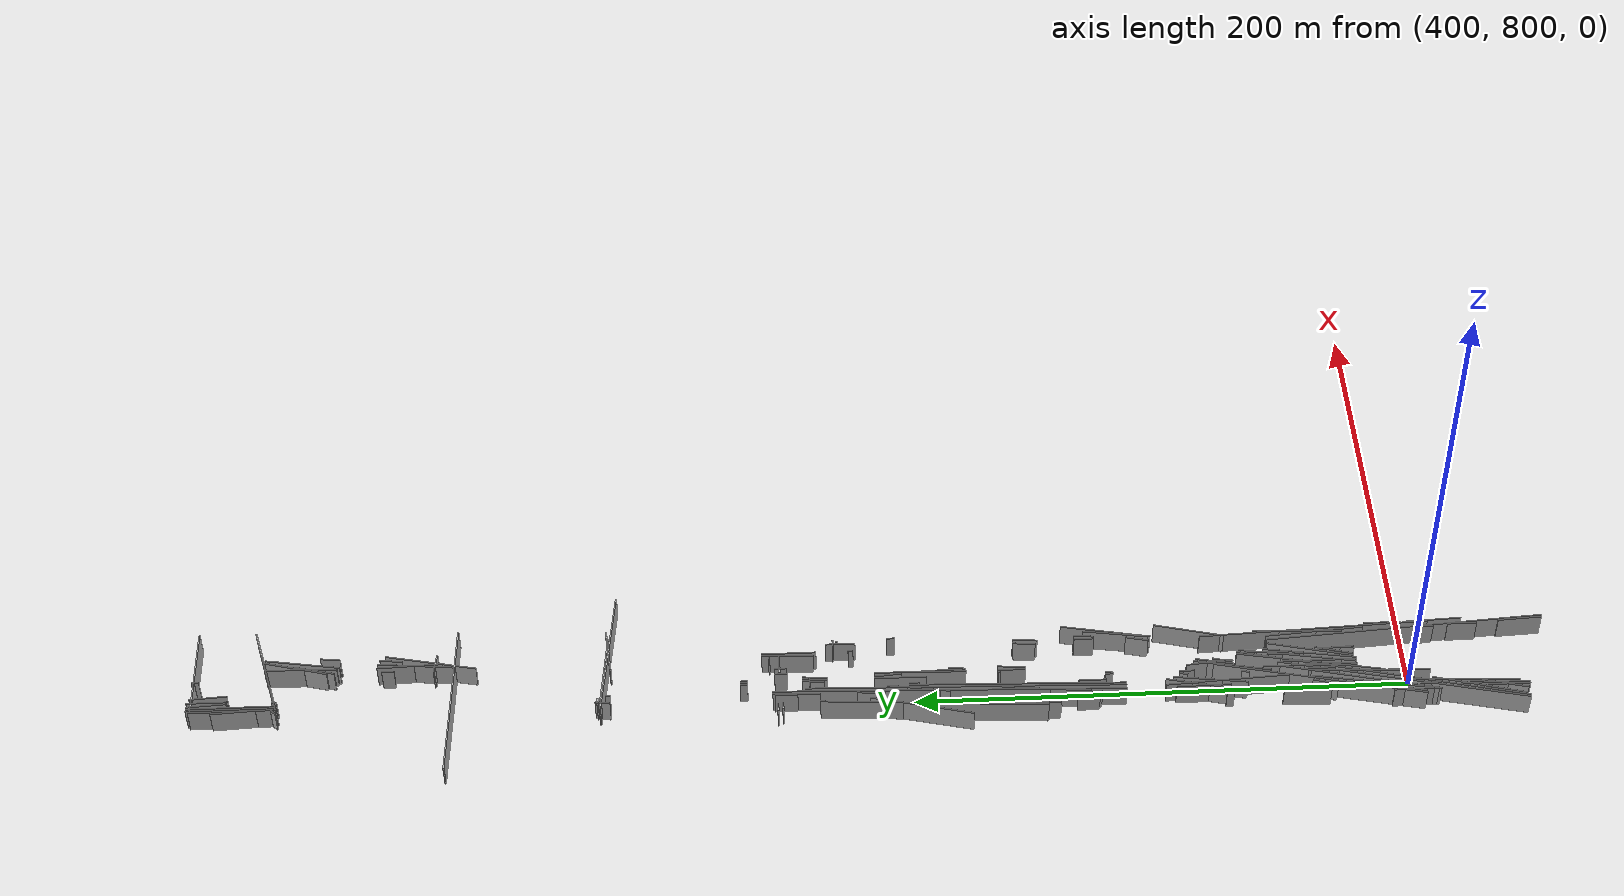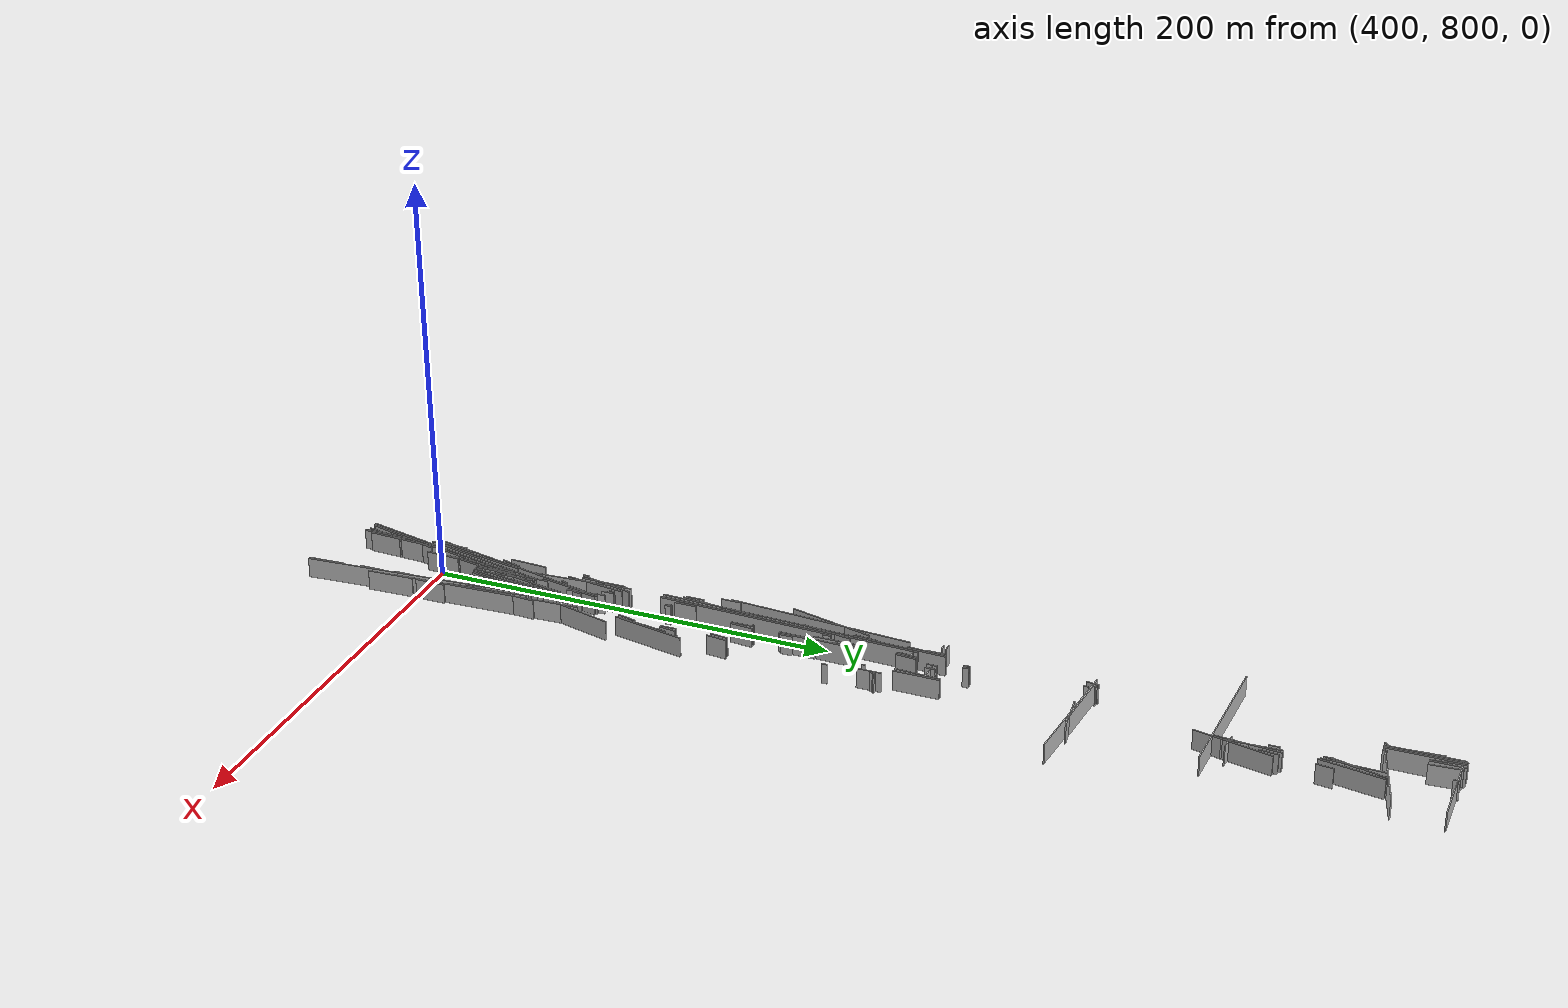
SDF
<sdf version="1.6">
 <model name="Worldsegments">
  <static>1</static>
  <link name="Wall_18">
   <pose>398.0 811.5 5.0 0 0 1.3319651</pose>
   <collision name="Wall_18_Collision">
    <geometry><box><size>118.35962 0.5 10.0</size></box></geometry>
   </collision>
   <visual name="Wall_18_Visual"><geometry><box><size>118.35962 0.5 10.0</size></box></geometry></visual>
  </link>
  <link name="Wall_19">
   <pose>399.0 998.5 5.0 0 0 1.4121411</pose>
   <collision name="Wall_19_Collision">
    <geometry><box><size>25.317978 0.5 10.0</size></box></geometry>
   </collision>
   <visual name="Wall_19_Visual"><geometry><box><size>25.317978 0.5 10.0</size></box></geometry></visual>
  </link>
  <link name="Wall_37">
   <pose>404.0 1068.5 5.0 0 0 1.5707964</pose>
   <collision name="Wall_37_Collision"><geometry><box><size>3.0 0.5 10.0</size></box></geometry></collision>
   <visual name="Wall_37_Visual"><geometry><box><size>3.0 0.5 10.0</size></box></geometry></visual>
  </link>
  <link name="Wall_41">
   <pose>422.0 799.0 5.0 0 0 -1.5007358</pose>
   <collision name="Wall_41_Collision">
    <geometry><box><size>114.28036 0.5 10.0</size></box></geometry>
   </collision>
   <visual name="Wall_41_Visual"><geometry><box><size>114.28036 0.5 10.0</size></box></geometry></visual>
  </link>
  <link name="Wall_48">
   <pose>408.0 875.0 5.0 0 0 1.3258177</pose>
   <collision name="Wall_48_Collision"><geometry><box><size>8.246211 0.5 10.0</size></box></geometry></collision>
   <visual name="Wall_48_Visual"><geometry><box><size>8.246211 0.5 10.0</size></box></geometry></visual>
  </link>
  <link name="Wall_55">
   <pose>400.0 928.5 5.0 0 0 1.5707964</pose>
   <collision name="Wall_55_Collision"><geometry><box><size>11.0 0.5 10.0</size></box></geometry></collision>
   <visual name="Wall_55_Visual"><geometry><box><size>11.0 0.5 10.0</size></box></geometry></visual>
  </link>
  <link name="Wall_57">
   <pose>390.0 773.5 5.0 0 0 1.3068326</pose>
   <collision name="Wall_57_Collision">
    <geometry><box><size>38.327538 0.5 10.0</size></box></geometry>
   </collision>
   <visual name="Wall_57_Visual"><geometry><box><size>38.327538 0.5 10.0</size></box></geometry></visual>
  </link>
  <link name="Wall_68">
   <pose>418.0 1211.5 5.0 0 0 1.5707964</pose>
   <collision name="Wall_68_Collision"><geometry><box><size>5.0 0.5 10.0</size></box></geometry></collision>
   <visual name="Wall_68_Visual"><geometry><box><size>5.0 0.5 10.0</size></box></geometry></visual>
  </link>
  <link name="Wall_72">
   <pose>406.5 1040.0 5.0 0 0 1.4711276</pose>
   <collision name="Wall_72_Collision">
    <geometry><box><size>10.049875 0.5 10.0</size></box></geometry>
   </collision>
   <visual name="Wall_72_Visual"><geometry><box><size>10.049875 0.5 10.0</size></box></geometry></visual>
  </link>
  <link name="Wall_73">
   <pose>400.0 822.0 5.0 0 0 1.5182133</pose>
   <collision name="Wall_73_Collision">
    <geometry><box><size>38.052597 0.5 10.0</size></box></geometry>
   </collision>
   <visual name="Wall_73_Visual"><geometry><box><size>38.052597 0.5 10.0</size></box></geometry></visual>
  </link>
  <link name="Wall_83">
   <pose>404.5 1040.5 5.0 0 0 1.4601392</pose>
   <collision name="Wall_83_Collision"><geometry><box><size>9.055386 0.5 10.0</size></box></geometry></collision>
   <visual name="Wall_83_Visual"><geometry><box><size>9.055386 0.5 10.0</size></box></geometry></visual>
  </link>
  <link name="Wall_93">
   <pose>423.5 1123.0 5.0 0 0 -0.1013465</pose>
   <collision name="Wall_93_Collision"><geometry><box><size>59.3043 0.5 10.0</size></box></geometry></collision>
   <visual name="Wall_93_Visual"><geometry><box><size>59.3043 0.5 10.0</size></box></geometry></visual>
  </link>
  <link name="Wall_98">
   <pose>420.5 1200.5 5.0 0 0 1.4743226</pose>
   <collision name="Wall_98_Collision">
    <geometry><box><size>31.144823 0.5 10.0</size></box></geometry>
   </collision>
   <visual name="Wall_98_Visual"><geometry><box><size>31.144823 0.5 10.0</size></box></geometry></visual>
  </link>
  <link name="Wall_100">
   <pose>395.0 884.0 5.0 0 0 1.5707964</pose>
   <collision name="Wall_100_Collision"><geometry><box><size>22.0 0.5 10.0</size></box></geometry></collision>
   <visual name="Wall_100_Visual"><geometry><box><size>22.0 0.5 10.0</size></box></geometry></visual>
  </link>
  <link name="Wall_101">
   <pose>401.0 1273.0 5.0 0 0 -1.5707964</pose>
   <collision name="Wall_101_Collision"><geometry><box><size>36.0 0.5 10.0</size></box></geometry></collision>
   <visual name="Wall_101_Visual"><geometry><box><size>36.0 0.5 10.0</size></box></geometry></visual>
  </link>
  <link name="Wall_104">
   <pose>424.5 887.0 5.0 0 0 1.3258177</pose>
   <collision name="Wall_104_Collision">
    <geometry><box><size>28.86174 0.5 10.0</size></box></geometry>
   </collision>
   <visual name="Wall_104_Visual"><geometry><box><size>28.86174 0.5 10.0</size></box></geometry></visual>
  </link>
  <link name="Wall_106">
   <pose>410.0 839.5 5.0 0 0 1.4100336</pose>
   <collision name="Wall_106_Collision">
    <geometry><box><size>37.48333 0.5 10.0</size></box></geometry>
   </collision>
   <visual name="Wall_106_Visual"><geometry><box><size>37.48333 0.5 10.0</size></box></geometry></visual>
  </link>
  <link name="Wall_108">
   <pose>397.5 986.0 5.0 0 0 1.5355996</pose>
   <collision name="Wall_108_Collision"><geometry><box><size>142.088 0.5 10.0</size></box></geometry></collision>
   <visual name="Wall_108_Visual"><geometry><box><size>142.088 0.5 10.0</size></box></geometry></visual>
  </link>
  <link name="Wall_110">
   <pose>402.5 1185.5 5.0 0 0 -0.0422284</pose>
   <collision name="Wall_110_Collision">
    <geometry><box><size>71.063354 0.5 10.0</size></box></geometry>
   </collision>
   <visual name="Wall_110_Visual"><geometry><box><size>71.063354 0.5 10.0</size></box></geometry></visual>
  </link>
  <link name="Wall_113">
   <pose>426.0 1008.5 5.0 0 0 -1.5707964</pose>
   <collision name="Wall_113_Collision"><geometry><box><size>3.0 0.5 10.0</size></box></geometry></collision>
   <visual name="Wall_113_Visual"><geometry><box><size>3.0 0.5 10.0</size></box></geometry></visual>
  </link>
  <link name="Wall_122">
   <pose>402.0 835.5 5.0 0 0 1.5707964</pose>
   <collision name="Wall_122_Collision"><geometry><box><size>11.0 0.5 10.0</size></box></geometry></collision>
   <visual name="Wall_122_Visual"><geometry><box><size>11.0 0.5 10.0</size></box></geometry></visual>
  </link>
  <link name="Wall_132">
   <pose>399.5 958.5 5.0 0 0 1.5363272</pose>
   <collision name="Wall_132_Collision">
    <geometry><box><size>87.05171 0.5 10.0</size></box></geometry>
   </collision>
   <visual name="Wall_132_Visual"><geometry><box><size>87.05171 0.5 10.0</size></box></geometry></visual>
  </link>
  <link name="Wall_134">
   <pose>405.0 871.5 5.0 0 0 1.3796118</pose>
   <collision name="Wall_134_Collision">
    <geometry><box><size>31.575306 0.5 10.0</size></box></geometry>
   </collision>
   <visual name="Wall_134_Visual"><geometry><box><size>31.575306 0.5 10.0</size></box></geometry></visual>
  </link>
  <link name="Wall_138">
   <pose>420.5 1246.5 5.0 0 0 1.5363272</pose>
   <collision name="Wall_138_Collision">
    <geometry><box><size>29.017237 0.5 10.0</size></box></geometry>
   </collision>
   <visual name="Wall_138_Visual"><geometry><box><size>29.017237 0.5 10.0</size></box></geometry></visual>
  </link>
  <link name="Wall_141">
   <pose>397.5 1125.0 5.0 0 0 1.4056476</pose>
   <collision name="Wall_141_Collision">
    <geometry><box><size>6.0827627 0.5 10.0</size></box></geometry>
   </collision>
   <visual name="Wall_141_Visual"><geometry><box><size>6.0827627 0.5 10.0</size></box></geometry></visual>
  </link>
  <link name="Wall_147">
   <pose>405.5 839.5 5.0 0 0 1.3864719</pose>
   <collision name="Wall_147_Collision">
    <geometry><box><size>60.016663 0.5 10.0</size></box></geometry>
   </collision>
   <visual name="Wall_147_Visual"><geometry><box><size>60.016663 0.5 10.0</size></box></geometry></visual>
  </link>
  <link name="Wall_150">
   <pose>394.5 803.5 5.0 0 0 1.3425225</pose>
   <collision name="Wall_150_Collision">
    <geometry><box><size>101.636604 0.5 10.0</size></box></geometry>
   </collision>
   <visual name="Wall_150_Visual"><geometry><box><size>101.636604 0.5 10.0</size></box></geometry></visual>
  </link>
  <link name="Wall_155">
   <pose>421.0 908.5 5.0 0 0 1.3521274</pose>
   <collision name="Wall_155_Collision">
    <geometry><box><size>9.219544 0.5 10.0</size></box></geometry>
   </collision>
   <visual name="Wall_155_Visual"><geometry><box><size>9.219544 0.5 10.0</size></box></geometry></visual>
  </link>
  <link name="Wall_158">
   <pose>423.0 775.0 5.0 0 0 -1.5707964</pose>
   <collision name="Wall_158_Collision"><geometry><box><size>12.0 0.5 10.0</size></box></geometry></collision>
   <visual name="Wall_158_Visual"><geometry><box><size>12.0 0.5 10.0</size></box></geometry></visual>
  </link>
  <link name="Wall_170">
   <pose>401.0 1123.0 5.0 0 0 -1.5707964</pose>
   <collision name="Wall_170_Collision"><geometry><box><size>2.0 0.5 10.0</size></box></geometry></collision>
   <visual name="Wall_170_Visual"><geometry><box><size>2.0 0.5 10.0</size></box></geometry></visual>
  </link>
  <link name="Wall_172">
   <pose>423.5 930.0 5.0 0 0 1.4464413</pose>
   <collision name="Wall_172_Collision">
    <geometry><box><size>8.062258 0.5 10.0</size></box></geometry>
   </collision>
   <visual name="Wall_172_Visual"><geometry><box><size>8.062258 0.5 10.0</size></box></geometry></visual>
  </link>
  <link name="Wall_174">
   <pose>420.0 1241.0 5.0 0 0 1.3258177</pose>
   <collision name="Wall_174_Collision">
    <geometry><box><size>16.492422 0.5 10.0</size></box></geometry>
   </collision>
   <visual name="Wall_174_Visual"><geometry><box><size>16.492422 0.5 10.0</size></box></geometry></visual>
  </link>
  <link name="Wall_178">
   <pose>406.0 1068.5 5.0 0 0 1.5707964</pose>
   <collision name="Wall_178_Collision"><geometry><box><size>3.0 0.5 10.0</size></box></geometry></collision>
   <visual name="Wall_178_Visual"><geometry><box><size>3.0 0.5 10.0</size></box></geometry></visual>
  </link>
  <link name="Wall_179">
   <pose>407.0 960.5 5.0 0 0 -1.5707964</pose>
   <collision name="Wall_179_Collision"><geometry><box><size>11.0 0.5 10.0</size></box></geometry></collision>
   <visual name="Wall_179_Visual"><geometry><box><size>11.0 0.5 10.0</size></box></geometry></visual>
  </link>
  <link name="Wall_182">
   <pose>411.0 829.5 5.0 0 0 1.3101939</pose>
   <collision name="Wall_182_Collision">
    <geometry><box><size>15.524175 0.5 10.0</size></box></geometry>
   </collision>
   <visual name="Wall_182_Visual"><geometry><box><size>15.524175 0.5 10.0</size></box></geometry></visual>
  </link>
  <link name="Wall_185">
   <pose>409.0 1053.5 5.0 0 0 1.5707964</pose>
   <collision name="Wall_185_Collision"><geometry><box><size>5.0 0.5 10.0</size></box></geometry></collision>
   <visual name="Wall_185_Visual"><geometry><box><size>5.0 0.5 10.0</size></box></geometry></visual>
  </link>
  <link name="Wall_186">
   <pose>398.5 1047.5 5.0 0 0 1.5182133</pose>
   <collision name="Wall_186_Collision">
    <geometry><box><size>19.026299 0.5 10.0</size></box></geometry>
   </collision>
   <visual name="Wall_186_Visual"><geometry><box><size>19.026299 0.5 10.0</size></box></geometry></visual>
  </link>
  <link name="Wall_193">
   <pose>409.0 983.0 5.0 0 0 1.5707964</pose>
   <collision name="Wall_193_Collision"><geometry><box><size>6.0 0.5 10.0</size></box></geometry></collision>
   <visual name="Wall_193_Visual"><geometry><box><size>6.0 0.5 10.0</size></box></geometry></visual>
  </link>
  <link name="Wall_196">
   <pose>399.0 979.5 5.0 0 0 1.5397985</pose>
   <collision name="Wall_196_Collision"><geometry><box><size>129.062 0.5 10.0</size></box></geometry></collision>
   <visual name="Wall_196_Visual"><geometry><box><size>129.062 0.5 10.0</size></box></geometry></visual>
  </link>
  <link name="Wall_197">
   <pose>396.5 837.0 5.0 0 0 1.3483491</pose>
   <collision name="Wall_197_Collision">
    <geometry><box><size>86.12201 0.5 10.0</size></box></geometry>
   </collision>
   <visual name="Wall_197_Visual"><geometry><box><size>86.12201 0.5 10.0</size></box></geometry></visual>
  </link>
  <link name="Wall_205">
   <pose>421.5 836.0 5.0 0 0 -1.4959365</pose>
   <collision name="Wall_205_Collision">
    <geometry><box><size>40.112343 0.5 10.0</size></box></geometry>
   </collision>
   <visual name="Wall_205_Visual"><geometry><box><size>40.112343 0.5 10.0</size></box></geometry></visual>
  </link>
  <link name="Wall_209">
   <pose>390.0 761.5 5.0 0 0 1.5707964</pose>
   <collision name="Wall_209_Collision"><geometry><box><size>17.0 0.5 10.0</size></box></geometry></collision>
   <visual name="Wall_209_Visual"><geometry><box><size>17.0 0.5 10.0</size></box></geometry></visual>
  </link>
  <link name="Wall_216">
   <pose>405.0 1068.5 5.0 0 0 1.5707964</pose>
   <collision name="Wall_216_Collision"><geometry><box><size>3.0 0.5 10.0</size></box></geometry></collision>
   <visual name="Wall_216_Visual"><geometry><box><size>3.0 0.5 10.0</size></box></geometry></visual>
  </link>
  <link name="Wall_217">
   <pose>409.0 844.5 5.0 0 0 1.4021994</pose>
   <collision name="Wall_217_Collision">
    <geometry><box><size>47.67599 0.5 10.0</size></box></geometry>
   </collision>
   <visual name="Wall_217_Visual"><geometry><box><size>47.67599 0.5 10.0</size></box></geometry></visual>
  </link>
  <link name="Wall_222">
   <pose>420.0 1025.0 5.0 0 0 -1.5707964</pose>
   <collision name="Wall_222_Collision"><geometry><box><size>2.0 0.5 10.0</size></box></geometry></collision>
   <visual name="Wall_222_Visual"><geometry><box><size>2.0 0.5 10.0</size></box></geometry></visual>
  </link>
  <link name="Wall_225">
   <pose>403.0 921.5 5.0 0 0 1.5707964</pose>
   <collision name="Wall_225_Collision"><geometry><box><size>3.0 0.5 10.0</size></box></geometry></collision>
   <visual name="Wall_225_Visual"><geometry><box><size>3.0 0.5 10.0</size></box></geometry></visual>
  </link>
  <link name="Wall_233">
   <pose>422.0 930.0 5.0 0 0 -1.5707964</pose>
   <collision name="Wall_233_Collision"><geometry><box><size>8.0 0.5 10.0</size></box></geometry></collision>
   <visual name="Wall_233_Visual"><geometry><box><size>8.0 0.5 10.0</size></box></geometry></visual>
  </link>
  <link name="Wall_242">
   <pose>404.0 1042.0 5.0 0 0 0.0</pose>
   <collision name="Wall_242_Collision"><geometry><box><size>4.0 0.5 10.0</size></box></geometry></collision>
   <visual name="Wall_242_Visual"><geometry><box><size>4.0 0.5 10.0</size></box></geometry></visual>
  </link>
  <link name="Wall_245">
   <pose>391.0 992.5 5.0 0 0 1.5049576</pose>
   <collision name="Wall_245_Collision">
    <geometry><box><size>91.197586 0.5 10.0</size></box></geometry>
   </collision>
   <visual name="Wall_245_Visual"><geometry><box><size>91.197586 0.5 10.0</size></box></geometry></visual>
  </link>
  <link name="Wall_253">
   <pose>424.0 1029.0 5.0 0 0 -1.5707964</pose>
   <collision name="Wall_253_Collision"><geometry><box><size>12.0 0.5 10.0</size></box></geometry></collision>
   <visual name="Wall_253_Visual"><geometry><box><size>12.0 0.5 10.0</size></box></geometry></visual>
  </link>
  <link name="Wall_255">
   <pose>407.5 878.5 5.0 0 0 1.3734008</pose>
   <collision name="Wall_255_Collision">
    <geometry><box><size>15.297058 0.5 10.0</size></box></geometry>
   </collision>
   <visual name="Wall_255_Visual"><geometry><box><size>15.297058 0.5 10.0</size></box></geometry></visual>
  </link>
  <link name="Wall_261">
   <pose>390.5 764.0 5.0 0 0 1.3258177</pose>
   <collision name="Wall_261_Collision">
    <geometry><box><size>20.615528 0.5 10.0</size></box></geometry>
   </collision>
   <visual name="Wall_261_Visual"><geometry><box><size>20.615528 0.5 10.0</size></box></geometry></visual>
  </link>
  <link name="Wall_264">
   <pose>416.0 1288.5 5.0 0 0 -1.5707964</pose>
   <collision name="Wall_264_Collision"><geometry><box><size>3.0 0.5 10.0</size></box></geometry></collision>
   <visual name="Wall_264_Visual"><geometry><box><size>3.0 0.5 10.0</size></box></geometry></visual>
  </link>
  <link name="Wall_267">
   <pose>424.5 1032.0 5.0 0 0 0.0</pose>
   <collision name="Wall_267_Collision"><geometry><box><size>3.0 0.5 10.0</size></box></geometry></collision>
   <visual name="Wall_267_Visual"><geometry><box><size>3.0 0.5 10.0</size></box></geometry></visual>
  </link>
  <link name="Wall_279">
   <pose>425.5 921.0 5.0 0 0 1.3787483</pose>
   <collision name="Wall_279_Collision">
    <geometry><box><size>36.67424 0.5 10.0</size></box></geometry>
   </collision>
   <visual name="Wall_279_Visual"><geometry><box><size>36.67424 0.5 10.0</size></box></geometry></visual>
  </link>
  <link name="Wall_283">
   <pose>407.5 997.5 5.0 0 0 1.5437759</pose>
   <collision name="Wall_283_Collision">
    <geometry><box><size>37.01351 0.5 10.0</size></box></geometry>
   </collision>
   <visual name="Wall_283_Visual"><geometry><box><size>37.01351 0.5 10.0</size></box></geometry></visual>
  </link>
  <link name="Wall_286">
   <pose>420.0 1050.0 5.0 0 0 -1.5707964</pose>
   <collision name="Wall_286_Collision"><geometry><box><size>22.0 0.5 10.0</size></box></geometry></collision>
   <visual name="Wall_286_Visual"><geometry><box><size>22.0 0.5 10.0</size></box></geometry></visual>
  </link>
  <link name="Wall_289">
   <pose>420.5 1202.5 5.0 0 0 -1.5337762</pose>
   <collision name="Wall_289_Collision">
    <geometry><box><size>27.018513 0.5 10.0</size></box></geometry>
   </collision>
   <visual name="Wall_289_Visual"><geometry><box><size>27.018513 0.5 10.0</size></box></geometry></visual>
  </link>
  <link name="Wall_293">
   <pose>420.5 954.5 5.0 0 0 1.4601392</pose>
   <collision name="Wall_293_Collision">
    <geometry><box><size>9.055386 0.5 10.0</size></box></geometry>
   </collision>
   <visual name="Wall_293_Visual"><geometry><box><size>9.055386 0.5 10.0</size></box></geometry></visual>
  </link>
  <link name="Wall_295">
   <pose>420.5 1289.0 5.0 0 0 0.0</pose>
   <collision name="Wall_295_Collision"><geometry><box><size>41.0 0.5 10.0</size></box></geometry></collision>
   <visual name="Wall_295_Visual"><geometry><box><size>41.0 0.5 10.0</size></box></geometry></visual>
  </link>
  <link name="Wall_299">
   <pose>421.5 1249.0 5.0 0 0 1.3078016</pose>
   <collision name="Wall_299_Collision">
    <geometry><box><size>26.925823 0.5 10.0</size></box></geometry>
   </collision>
   <visual name="Wall_299_Visual"><geometry><box><size>26.925823 0.5 10.0</size></box></geometry></visual>
  </link>
  <link name="Wall_302">
   <pose>396.5 821.0 5.0 0 0 1.3405768</pose>
   <collision name="Wall_302_Collision">
    <geometry><box><size>65.734314 0.5 10.0</size></box></geometry>
   </collision>
   <visual name="Wall_302_Visual"><geometry><box><size>65.734314 0.5 10.0</size></box></geometry></visual>
  </link>
  <link name="Wall_305">
   <pose>390.0 997.5 5.0 0 0 1.3315648</pose>
   <collision name="Wall_305_Collision">
    <geometry><box><size>42.201897 0.5 10.0</size></box></geometry>
   </collision>
   <visual name="Wall_305_Visual"><geometry><box><size>42.201897 0.5 10.0</size></box></geometry></visual>
  </link>
  <link name="Wall_308">
   <pose>423.0 836.0 5.0 0 0 -1.5282688</pose>
   <collision name="Wall_308_Collision">
    <geometry><box><size>94.08507 0.5 10.0</size></box></geometry>
   </collision>
   <visual name="Wall_308_Visual"><geometry><box><size>94.08507 0.5 10.0</size></box></geometry></visual>
  </link>
  <link name="Wall_312">
   <pose>424.5 751.0 5.0 0 0 -1.5152978</pose>
   <collision name="Wall_312_Collision">
    <geometry><box><size>18.027756 0.5 10.0</size></box></geometry>
   </collision>
   <visual name="Wall_312_Visual"><geometry><box><size>18.027756 0.5 10.0</size></box></geometry></visual>
  </link>
  <link name="Wall_315">
   <pose>392.0 793.0 5.0 0 0 1.5707964</pose>
   <collision name="Wall_315_Collision"><geometry><box><size>8.0 0.5 10.0</size></box></geometry></collision>
   <visual name="Wall_315_Visual"><geometry><box><size>8.0 0.5 10.0</size></box></geometry></visual>
  </link>
  <link name="Wall_325">
   <pose>420.5 1260.5 5.0 0 0 0.26211983</pose>
   <collision name="Wall_325_Collision">
    <geometry><box><size>42.44997 0.5 10.0</size></box></geometry>
   </collision>
   <visual name="Wall_325_Visual"><geometry><box><size>42.44997 0.5 10.0</size></box></geometry></visual>
  </link>
  <link name="Wall_329">
   <pose>399.5 1272.0 5.0 0 0 -1.5152978</pose>
   <collision name="Wall_329_Collision">
    <geometry><box><size>18.027756 0.5 10.0</size></box></geometry>
   </collision>
   <visual name="Wall_329_Visual"><geometry><box><size>18.027756 0.5 10.0</size></box></geometry></visual>
  </link>
  <link name="Wall_339">
   <pose>423.5 1246.0 5.0 0 0 1.4056476</pose>
   <collision name="Wall_339_Collision">
    <geometry><box><size>30.413813 0.5 10.0</size></box></geometry>
   </collision>
   <visual name="Wall_339_Visual"><geometry><box><size>30.413813 0.5 10.0</size></box></geometry></visual>
  </link>
  <link name="Wall_342">
   <pose>403.5 1283.0 5.0 0 0 -1.5083776</pose>
   <collision name="Wall_342_Collision">
    <geometry><box><size>16.03122 0.5 10.0</size></box></geometry>
   </collision>
   <visual name="Wall_342_Visual"><geometry><box><size>16.03122 0.5 10.0</size></box></geometry></visual>
  </link>
  <link name="Wall_347">
   <pose>422.5 954.0 5.0 0 0 1.4711276</pose>
   <collision name="Wall_347_Collision">
    <geometry><box><size>10.049875 0.5 10.0</size></box></geometry>
   </collision>
   <visual name="Wall_347_Visual"><geometry><box><size>10.049875 0.5 10.0</size></box></geometry></visual>
  </link>
  <link name="Wall_350">
   <pose>411.5 856.5 5.0 0 0 1.5120405</pose>
   <collision name="Wall_350_Collision">
    <geometry><box><size>17.029387 0.5 10.0</size></box></geometry>
   </collision>
   <visual name="Wall_350_Visual"><geometry><box><size>17.029387 0.5 10.0</size></box></geometry></visual>
  </link>
  <link name="Wall_352">
   <pose>403.0 890.0 5.0 0 0 1.5707964</pose>
   <collision name="Wall_352_Collision"><geometry><box><size>6.0 0.5 10.0</size></box></geometry></collision>
   <visual name="Wall_352_Visual"><geometry><box><size>6.0 0.5 10.0</size></box></geometry></visual>
  </link>
  <link name="Wall_356">
   <pose>393.0 778.5 5.0 0 0 1.5243182</pose>
   <collision name="Wall_356_Collision">
    <geometry><box><size>43.046486 0.5 10.0</size></box></geometry>
   </collision>
   <visual name="Wall_356_Visual"><geometry><box><size>43.046486 0.5 10.0</size></box></geometry></visual>
  </link>
  <link name="Wall_358">
   <pose>414.5 1054.0 5.0 0 0 0.0</pose>
   <collision name="Wall_358_Collision"><geometry><box><size>9.0 0.5 10.0</size></box></geometry></collision>
   <visual name="Wall_358_Visual"><geometry><box><size>9.0 0.5 10.0</size></box></geometry></visual>
  </link>
  <link name="Wall_363">
   <pose>425.0 807.5 5.0 0 0 -1.5707964</pose>
   <collision name="Wall_363_Collision"><geometry><box><size>15.0 0.5 10.0</size></box></geometry></collision>
   <visual name="Wall_363_Visual"><geometry><box><size>15.0 0.5 10.0</size></box></geometry></visual>
  </link>
  <link name="Wall_383">
   <pose>424.0 917.0 5.0 0 0 1.418147</pose>
   <collision name="Wall_383_Collision">
    <geometry><box><size>26.305893 0.5 10.0</size></box></geometry>
   </collision>
   <visual name="Wall_383_Visual"><geometry><box><size>26.305893 0.5 10.0</size></box></geometry></visual>
  </link>
  <link name="Wall_388">
   <pose>392.0 774.0 5.0 0 0 1.5707964</pose>
   <collision name="Wall_388_Collision"><geometry><box><size>6.0 0.5 10.0</size></box></geometry></collision>
   <visual name="Wall_388_Visual"><geometry><box><size>6.0 0.5 10.0</size></box></geometry></visual>
  </link>
  <link name="Wall_391">
   <pose>406.0 836.5 5.0 0 0 -1.5707964</pose>
   <collision name="Wall_391_Collision"><geometry><box><size>31.0 0.5 10.0</size></box></geometry></collision>
   <visual name="Wall_391_Visual"><geometry><box><size>31.0 0.5 10.0</size></box></geometry></visual>
  </link>
  <link name="Wall_400">
   <pose>422.0 1194.5 5.0 0 0 1.357858</pose>
   <collision name="Wall_400_Collision">
    <geometry><box><size>37.85499 0.5 10.0</size></box></geometry>
   </collision>
   <visual name="Wall_400_Visual"><geometry><box><size>37.85499 0.5 10.0</size></box></geometry></visual>
  </link>
  <link name="Wall_409">
   <pose>406.5 1010.5 5.0 0 0 -1.4801364</pose>
   <collision name="Wall_409_Collision">
    <geometry><box><size>11.045361 0.5 10.0</size></box></geometry>
   </collision>
   <visual name="Wall_409_Visual"><geometry><box><size>11.045361 0.5 10.0</size></box></geometry></visual>
  </link>
  <link name="Wall_413">
   <pose>404.0 1256.0 5.0 0 0 1.5707964</pose>
   <collision name="Wall_413_Collision"><geometry><box><size>2.0 0.5 10.0</size></box></geometry></collision>
   <visual name="Wall_413_Visual"><geometry><box><size>2.0 0.5 10.0</size></box></geometry></visual>
  </link>
  <link name="Wall_424">
   <pose>408.0 988.0 5.0 0 0 -1.5707964</pose>
   <collision name="Wall_424_Collision"><geometry><box><size>18.0 0.5 10.0</size></box></geometry></collision>
   <visual name="Wall_424_Visual"><geometry><box><size>18.0 0.5 10.0</size></box></geometry></visual>
  </link>
  <link name="Wall_430">
   <pose>405.0 1283.0 5.0 0 0 1.5707964</pose>
   <collision name="Wall_430_Collision"><geometry><box><size>16.0 0.5 10.0</size></box></geometry></collision>
   <visual name="Wall_430_Visual"><geometry><box><size>16.0 0.5 10.0</size></box></geometry></visual>
  </link>
  <link name="Wall_434">
   <pose>393.5 815.0 5.0 0 0 1.3927034</pose>
   <collision name="Wall_434_Collision">
    <geometry><box><size>50.803543 0.5 10.0</size></box></geometry>
   </collision>
   <visual name="Wall_434_Visual"><geometry><box><size>50.803543 0.5 10.0</size></box></geometry></visual>
  </link>
  <link name="Wall_435">
   <pose>407.0 880.5 5.0 0 0 -1.4659194</pose>
   <collision name="Wall_435_Collision">
    <geometry><box><size>19.104973 0.5 10.0</size></box></geometry>
   </collision>
   <visual name="Wall_435_Visual"><geometry><box><size>19.104973 0.5 10.0</size></box></geometry></visual>
  </link>
  <link name="Wall_450">
   <pose>402.0 1273.5 5.0 0 0 -1.5707964</pose>
   <collision name="Wall_450_Collision"><geometry><box><size>35.0 0.5 10.0</size></box></geometry></collision>
   <visual name="Wall_450_Visual"><geometry><box><size>35.0 0.5 10.0</size></box></geometry></visual>
  </link>
  <link name="Wall_451">
   <pose>425.0 1030.5 5.0 0 0 1.5707964</pose>
   <collision name="Wall_451_Collision"><geometry><box><size>1.0 0.5 10.0</size></box></geometry></collision>
   <visual name="Wall_451_Visual"><geometry><box><size>1.0 0.5 10.0</size></box></geometry></visual>
  </link>
  <link name="Wall_454">
   <pose>392.5 1053.0 5.0 0 0 0.0</pose>
   <collision name="Wall_454_Collision"><geometry><box><size>3.0 0.5 10.0</size></box></geometry></collision>
   <visual name="Wall_454_Visual"><geometry><box><size>3.0 0.5 10.0</size></box></geometry></visual>
  </link>
  <link name="Wall_458">
   <pose>422.0 791.0 5.0 0 0 -1.5707964</pose>
   <collision name="Wall_458_Collision"><geometry><box><size>8.0 0.5 10.0</size></box></geometry></collision>
   <visual name="Wall_458_Visual"><geometry><box><size>8.0 0.5 10.0</size></box></geometry></visual>
  </link>
  <link name="Wall_465">
   <pose>391.0 766.5 5.0 0 0 1.5707964</pose>
   <collision name="Wall_465_Collision"><geometry><box><size>27.0 0.5 10.0</size></box></geometry></collision>
   <visual name="Wall_465_Visual"><geometry><box><size>27.0 0.5 10.0</size></box></geometry></visual>
  </link>
  <link name="Wall_472">
   <pose>392.0 873.5 5.0 0 0 1.5707964</pose>
   <collision name="Wall_472_Collision"><geometry><box><size>3.0 0.5 10.0</size></box></geometry></collision>
   <visual name="Wall_472_Visual"><geometry><box><size>3.0 0.5 10.0</size></box></geometry></visual>
  </link>
  <link name="Wall_481">
   <pose>425.0 1123.0 5.0 0 0 0.09966865</pose>
   <collision name="Wall_481_Collision">
    <geometry><box><size>20.09975 0.5 10.0</size></box></geometry>
   </collision>
   <visual name="Wall_481_Visual"><geometry><box><size>20.09975 0.5 10.0</size></box></geometry></visual>
  </link>
  <link name="Wall_490">
   <pose>398.0 881.0 5.0 0 0 1.4382448</pose>
   <collision name="Wall_490_Collision">
    <geometry><box><size>30.265491 0.5 10.0</size></box></geometry>
   </collision>
   <visual name="Wall_490_Visual"><geometry><box><size>30.265491 0.5 10.0</size></box></geometry></visual>
  </link>
  <link name="Wall_499">
   <pose>403.5 840.0 5.0 0 0 1.5444866</pose>
   <collision name="Wall_499_Collision">
    <geometry><box><size>38.013157 0.5 10.0</size></box></geometry>
   </collision>
   <visual name="Wall_499_Visual"><geometry><box><size>38.013157 0.5 10.0</size></box></geometry></visual>
  </link>
  <link name="Wall_504">
   <pose>412.0 1053.5 5.0 0 0 1.5707964</pose>
   <collision name="Wall_504_Collision"><geometry><box><size>5.0 0.5 10.0</size></box></geometry></collision>
   <visual name="Wall_504_Visual"><geometry><box><size>5.0 0.5 10.0</size></box></geometry></visual>
  </link>
  <link name="Wall_510">
   <pose>405.5 1040.0 5.0 0 0 1.4711276</pose>
   <collision name="Wall_510_Collision">
    <geometry><box><size>10.049875 0.5 10.0</size></box></geometry>
   </collision>
   <visual name="Wall_510_Visual"><geometry><box><size>10.049875 0.5 10.0</size></box></geometry></visual>
  </link>
  <link name="Wall_512">
   <pose>412.5 828.5 5.0 0 0 -1.5042281</pose>
   <collision name="Wall_512_Collision">
    <geometry><box><size>15.033297 0.5 10.0</size></box></geometry>
   </collision>
   <visual name="Wall_512_Visual"><geometry><box><size>15.033297 0.5 10.0</size></box></geometry></visual>
  </link>
  <link name="Wall_514">
   <pose>398.0 1051.5 5.0 0 0 1.5707964</pose>
   <collision name="Wall_514_Collision"><geometry><box><size>9.0 0.5 10.0</size></box></geometry></collision>
   <visual name="Wall_514_Visual"><geometry><box><size>9.0 0.5 10.0</size></box></geometry></visual>
  </link>
  <link name="Wall_515">
   <pose>408.5 960.5 5.0 0 0 1.4801364</pose>
   <collision name="Wall_515_Collision">
    <geometry><box><size>11.045361 0.5 10.0</size></box></geometry>
   </collision>
   <visual name="Wall_515_Visual"><geometry><box><size>11.045361 0.5 10.0</size></box></geometry></visual>
  </link>
  <link name="Wall_516">
   <pose>407.5 1282.5 5.0 0 0 -1.5042281</pose>
   <collision name="Wall_516_Collision">
    <geometry><box><size>15.033297 0.5 10.0</size></box></geometry>
   </collision>
   <visual name="Wall_516_Visual"><geometry><box><size>15.033297 0.5 10.0</size></box></geometry></visual>
  </link>
  <link name="Wall_519">
   <pose>418.5 1050.5 5.0 0 0 1.5232133</pose>
   <collision name="Wall_519_Collision">
    <geometry><box><size>21.023796 0.5 10.0</size></box></geometry>
   </collision>
   <visual name="Wall_519_Visual"><geometry><box><size>21.023796 0.5 10.0</size></box></geometry></visual>
  </link>
  <link name="Wall_523">
   <pose>410.0 849.5 5.0 0 0 -1.5707964</pose>
   <collision name="Wall_523_Collision"><geometry><box><size>15.0 0.5 10.0</size></box></geometry></collision>
   <visual name="Wall_523_Visual"><geometry><box><size>15.0 0.5 10.0</size></box></geometry></visual>
  </link>
  <link name="Wall_525">
   <pose>425.5 786.5 5.0 0 0 -1.5273454</pose>
   <collision name="Wall_525_Collision">
    <geometry><box><size>23.021729 0.5 10.0</size></box></geometry>
   </collision>
   <visual name="Wall_525_Visual"><geometry><box><size>23.021729 0.5 10.0</size></box></geometry></visual>
  </link>
  <link name="Wall_528">
   <pose>398.5 1127.0 5.0 0 0 0.0</pose>
   <collision name="Wall_528_Collision"><geometry><box><size>3.0 0.5 10.0</size></box></geometry></collision>
   <visual name="Wall_528_Visual"><geometry><box><size>3.0 0.5 10.0</size></box></geometry></visual>
  </link>
  <link name="Wall_532">
   <pose>412.5 825.5 5.0 0 0 1.4601392</pose>
   <collision name="Wall_532_Collision">
    <geometry><box><size>9.055386 0.5 10.0</size></box></geometry>
   </collision>
   <visual name="Wall_532_Visual"><geometry><box><size>9.055386 0.5 10.0</size></box></geometry></visual>
  </link>
  <link name="Wall_536">
   <pose>396.0 886.0 5.0 0 0 1.3439975</pose>
   <collision name="Wall_536_Collision">
    <geometry><box><size>26.683329 0.5 10.0</size></box></geometry>
   </collision>
   <visual name="Wall_536_Visual"><geometry><box><size>26.683329 0.5 10.0</size></box></geometry></visual>
  </link>
  <link name="Wall_537">
   <pose>414.5 1124.5 5.0 0 0 -0.09065989</pose>
   <collision name="Wall_537_Collision">
    <geometry><box><size>33.13608 0.5 10.0</size></box></geometry>
   </collision>
   <visual name="Wall_537_Visual"><geometry><box><size>33.13608 0.5 10.0</size></box></geometry></visual>
  </link>
  <link name="Wall_538">
   <pose>399.0 1256.0 5.0 0 0 0.7853982</pose>
   <collision name="Wall_538_Collision">
    <geometry><box><size>2.828427 0.5 10.0</size></box></geometry>
   </collision>
   <visual name="Wall_538_Visual"><geometry><box><size>2.828427 0.5 10.0</size></box></geometry></visual>
  </link>
  <link name="Wall_541">
   <pose>401.5 866.5 5.0 0 0 1.2490457</pose>
   <collision name="Wall_541_Collision">
    <geometry><box><size>3.1622777 0.5 10.0</size></box></geometry>
   </collision>
   <visual name="Wall_541_Visual"><geometry><box><size>3.1622777 0.5 10.0</size></box></geometry></visual>
  </link>
  <link name="Wall_542">
   <pose>405.0 1005.5 5.0 0 0 -1.5707964</pose>
   <collision name="Wall_542_Collision"><geometry><box><size>21.0 0.5 10.0</size></box></geometry></collision>
   <visual name="Wall_542_Visual"><geometry><box><size>21.0 0.5 10.0</size></box></geometry></visual>
  </link>
  <link name="Wall_546">
   <pose>397.5 874.0 5.0 0 0 -1.5108682</pose>
   <collision name="Wall_546_Collision">
    <geometry><box><size>50.08992 0.5 10.0</size></box></geometry>
   </collision>
   <visual name="Wall_546_Visual"><geometry><box><size>50.08992 0.5 10.0</size></box></geometry></visual>
  </link>
  <link name="Wall_548">
   <pose>425.5 1235.0 5.0 0 0 1.4464413</pose>
   <collision name="Wall_548_Collision">
    <geometry><box><size>8.062258 0.5 10.0</size></box></geometry>
   </collision>
   <visual name="Wall_548_Visual"><geometry><box><size>8.062258 0.5 10.0</size></box></geometry></visual>
  </link>
  <link name="Wall_552">
   <pose>412.0 839.0 5.0 0 0 1.3397057</pose>
   <collision name="Wall_552_Collision">
    <geometry><box><size>34.928497 0.5 10.0</size></box></geometry>
   </collision>
   <visual name="Wall_552_Visual"><geometry><box><size>34.928497 0.5 10.0</size></box></geometry></visual>
  </link>
  <link name="Wall_555">
   <pose>404.0 921.5 5.0 0 0 1.5707964</pose>
   <collision name="Wall_555_Collision"><geometry><box><size>3.0 0.5 10.0</size></box></geometry></collision>
   <visual name="Wall_555_Visual"><geometry><box><size>3.0 0.5 10.0</size></box></geometry></visual>
  </link>
  <link name="Wall_567">
   <pose>399.5 800.5 5.0 0 0 1.5120405</pose>
   <collision name="Wall_567_Collision">
    <geometry><box><size>17.029387 0.5 10.0</size></box></geometry>
   </collision>
   <visual name="Wall_567_Visual"><geometry><box><size>17.029387 0.5 10.0</size></box></geometry></visual>
  </link>
  <link name="Wall_570">
   <pose>401.5 891.5 5.0 0 0 1.2490457</pose>
   <collision name="Wall_570_Collision">
    <geometry><box><size>3.1622777 0.5 10.0</size></box></geometry>
   </collision>
   <visual name="Wall_570_Visual"><geometry><box><size>3.1622777 0.5 10.0</size></box></geometry></visual>
  </link>
  <link name="Wall_572">
   <pose>400.0 1273.0 5.0 0 0 -1.5707964</pose>
   <collision name="Wall_572_Collision"><geometry><box><size>34.0 0.5 10.0</size></box></geometry></collision>
   <visual name="Wall_572_Visual"><geometry><box><size>34.0 0.5 10.0</size></box></geometry></visual>
  </link>
  <link name="Wall_574">
   <pose>406.0 965.5 5.0 0 0 1.5707964</pose>
   <collision name="Wall_574_Collision"><geometry><box><size>1.0 0.5 10.0</size></box></geometry></collision>
   <visual name="Wall_574_Visual"><geometry><box><size>1.0 0.5 10.0</size></box></geometry></visual>
  </link>
  <link name="Wall_579">
   <pose>389.0 947.0 5.0 0 0 -1.5707964</pose>
   <collision name="Wall_579_Collision"><geometry><box><size>10.0 0.5 10.0</size></box></geometry></collision>
   <visual name="Wall_579_Visual"><geometry><box><size>10.0 0.5 10.0</size></box></geometry></visual>
  </link>
  <link name="Wall_587">
   <pose>402.0 1000.0 5.0 0 0 1.5707964</pose>
   <collision name="Wall_587_Collision"><geometry><box><size>4.0 0.5 10.0</size></box></geometry></collision>
   <visual name="Wall_587_Visual"><geometry><box><size>4.0 0.5 10.0</size></box></geometry></visual>
  </link>
  <link name="Wall_589">
   <pose>422.0 843.0 5.0 0 0 1.5152978</pose>
   <collision name="Wall_589_Collision">
    <geometry><box><size>36.05551 0.5 10.0</size></box></geometry>
   </collision>
   <visual name="Wall_589_Visual"><geometry><box><size>36.05551 0.5 10.0</size></box></geometry></visual>
  </link>
  <link name="Wall_590">
   <pose>394.5 835.0 5.0 0 0 1.2793396</pose>
   <collision name="Wall_590_Collision">
    <geometry><box><size>10.440307 0.5 10.0</size></box></geometry>
   </collision>
   <visual name="Wall_590_Visual"><geometry><box><size>10.440307 0.5 10.0</size></box></geometry></visual>
  </link>
  <link name="Wall_594">
   <pose>404.0 831.5 5.0 0 0 1.5707964</pose>
   <collision name="Wall_594_Collision"><geometry><box><size>21.0 0.5 10.0</size></box></geometry></collision>
   <visual name="Wall_594_Visual"><geometry><box><size>21.0 0.5 10.0</size></box></geometry></visual>
  </link>
  <link name="Wall_596">
   <pose>421.5 1192.5 5.0 0 0 -0.11065722</pose>
   <collision name="Wall_596_Collision">
    <geometry><box><size>9.055386 0.5 10.0</size></box></geometry>
   </collision>
   <visual name="Wall_596_Visual"><geometry><box><size>9.055386 0.5 10.0</size></box></geometry></visual>
  </link>
  <link name="Wall_598">
   <pose>417.5 1058.0 5.0 0 0 0.0</pose>
   <collision name="Wall_598_Collision"><geometry><box><size>1.0 0.5 10.0</size></box></geometry></collision>
   <visual name="Wall_598_Visual"><geometry><box><size>1.0 0.5 10.0</size></box></geometry></visual>
  </link>
  <link name="Wall_604">
   <pose>389.0 800.0 5.0 0 0 1.5707964</pose>
   <collision name="Wall_604_Collision"><geometry><box><size>16.0 0.5 10.0</size></box></geometry></collision>
   <visual name="Wall_604_Visual"><geometry><box><size>16.0 0.5 10.0</size></box></geometry></visual>
  </link>
  <link name="Wall_611">
   <pose>423.5 1210.5 5.0 0 0 1.4601392</pose>
   <collision name="Wall_611_Collision">
    <geometry><box><size>9.055386 0.5 10.0</size></box></geometry>
   </collision>
   <visual name="Wall_611_Visual"><geometry><box><size>9.055386 0.5 10.0</size></box></geometry></visual>
  </link>
  <link name="Wall_616">
   <pose>391.5 842.5 5.0 0 0 1.5182133</pose>
   <collision name="Wall_616_Collision">
    <geometry><box><size>19.026299 0.5 10.0</size></box></geometry>
   </collision>
   <visual name="Wall_616_Visual"><geometry><box><size>19.026299 0.5 10.0</size></box></geometry></visual>
  </link>
  <link name="Wall_617">
   <pose>397.5 1017.5 5.0 0 0 1.4801364</pose>
   <collision name="Wall_617_Collision">
    <geometry><box><size>11.045361 0.5 10.0</size></box></geometry>
   </collision>
   <visual name="Wall_617_Visual"><geometry><box><size>11.045361 0.5 10.0</size></box></geometry></visual>
  </link>
  <link name="Wall_628">
   <pose>393.0 930.5 5.0 0 0 1.5707964</pose>
   <collision name="Wall_628_Collision"><geometry><box><size>9.0 0.5 10.0</size></box></geometry></collision>
   <visual name="Wall_628_Visual"><geometry><box><size>9.0 0.5 10.0</size></box></geometry></visual>
  </link>
  <link name="Wall_633">
   <pose>390.0 804.0 5.0 0 0 1.3521274</pose>
   <collision name="Wall_633_Collision">
    <geometry><box><size>18.439089 0.5 10.0</size></box></geometry>
   </collision>
   <visual name="Wall_633_Visual"><geometry><box><size>18.439089 0.5 10.0</size></box></geometry></visual>
  </link>
  <link name="Wall_637">
   <pose>396.0 945.0 5.0 0 0 1.4711276</pose>
   <collision name="Wall_637_Collision"><geometry><box><size>40.1995 0.5 10.0</size></box></geometry></collision>
   <visual name="Wall_637_Visual"><geometry><box><size>40.1995 0.5 10.0</size></box></geometry></visual>
  </link>
  <link name="Wall_638">
   <pose>392.0 1055.0 5.0 0 0 0.0</pose>
   <collision name="Wall_638_Collision"><geometry><box><size>4.0 0.5 10.0</size></box></geometry></collision>
   <visual name="Wall_638_Visual"><geometry><box><size>4.0 0.5 10.0</size></box></geometry></visual>
  </link>
 </model>
</sdf>
